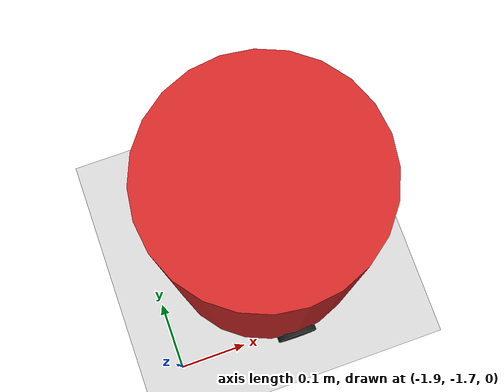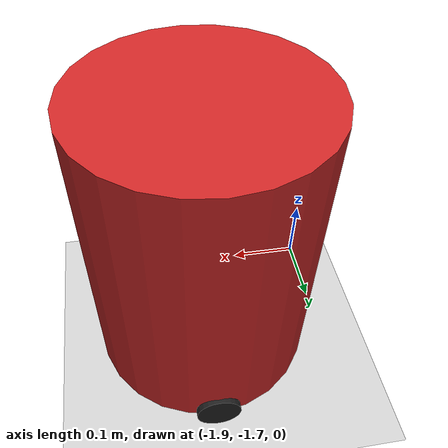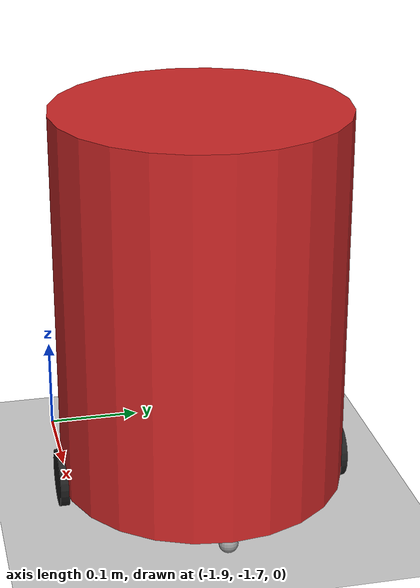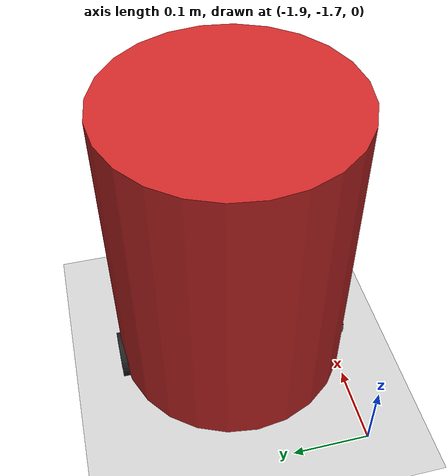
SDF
<sdf version="1.6">
 <world name="default">
  <model name="ground_plane">
   <static>1</static>
   <link name="ground_link">
    <collision name="collision">
     <geometry><plane><normal>0 0 1</normal><size>100 100</size></plane></geometry>
     <surface><friction><ode><mu>100</mu><mu2>50</mu2></ode></friction></surface>
    </collision>
    <visual name="visual">
     <cast_shadows>0</cast_shadows>
     <geometry><plane><normal>0 0 1</normal><size>100 100</size></plane></geometry>
     <material>
      <script><uri>file://media/materials/scripts/gazebo.material</uri><name>Gazebo/Grey</name></script>
     </material>
    </visual>
   </link>
  </model>
  <model name="CleanerBot_7">
   <link name="link_0">
    <inertial>
     <mass>1</mass>
     <inertia><ixx>0.145833</ixx><ixy>0</ixy><ixz>0</ixz><iyy>0.145833</iyy><iyz>0</iyz><izz>0.125</izz></inertia>
    </inertial>
    <pose>0 0 0.2001 0 -0 0</pose>
    <visual name="visual">
     <geometry><cylinder><radius>0.15</radius><length>0.4</length></cylinder></geometry>
     <material>
      <lighting>1</lighting>
      <script><uri>file://media/materials/scripts/gazebo.material</uri><name>Gazebo/Red</name></script>
      <shader type="pixel"><normal_map>__default__</normal_map></shader>
      <ambient>0.8 0 0 1</ambient>
      <diffuse>0.7 0.7 0.7 1</diffuse>
      <specular>0.01 0.01 0.01 1</specular>
      <emissive>0 0 0 1</emissive>
     </material>
    </visual>
    <collision name="collision">
     <geometry><cylinder><radius>0.15</radius><length>0.4</length></cylinder></geometry>
     <surface>
      <friction>
       <ode><mu>1</mu><mu2>1</mu2><fdir1>0 0 0</fdir1><slip1>0</slip1><slip2>0</slip2></ode>
       <torsional>
        <coefficient>1</coefficient>
        <patch_radius>0</patch_radius>
        <surface_radius>0</surface_radius>
        <use_patch_radius>1</use_patch_radius>
        <ode><slip>0</slip></ode>
       </torsional>
      </friction>
      <bounce><restitution_coefficient>0</restitution_coefficient><threshold>1e+06</threshold></bounce>
      <contact>
       <collide_without_contact>0</collide_without_contact>
       <collide_without_contact_bitmask>1</collide_without_contact_bitmask>
       <collide_bitmask>1</collide_bitmask>
       <ode>
        <soft_cfm>0</soft_cfm>
        <soft_erp>0.2</soft_erp>
        <kp>1e+13</kp>
        <kd>1</kd>
        <max_vel>0.01</max_vel>
        <min_depth>0</min_depth>
       </ode>
       <bullet>
        <split_impulse>1</split_impulse>
        <split_impulse_penetration_threshold>-0.01</split_impulse_penetration_threshold>
        <soft_cfm>0</soft_cfm>
        <soft_erp>0.2</soft_erp>
        <kp>1e+13</kp>
        <kd>1</kd>
       </bullet>
      </contact>
     </surface>
    </collision>
   </link>
   <link name="link_1">
    <inertial>
     <mass>1</mass>
     <inertia><ixx>0.145833</ixx><ixy>0</ixy><ixz>0</ixz><iyy>0.145833</iyy><iyz>0</iyz><izz>0.125</izz></inertia>
    </inertial>
    <pose>0 0.15 0.007 1.5707 -0 0</pose>
    <visual name="visual">
     <geometry><cylinder><radius>0.03</radius><length>0.01</length></cylinder></geometry>
     <material>
      <lighting>1</lighting>
      <script><uri>file://media/materials/scripts/gazebo.material</uri><name>Gazebo/Black</name></script>
      <shader type="pixel"><normal_map>__default__</normal_map></shader>
      <ambient>0 0 0.8 1</ambient>
      <diffuse>0.7 0.7 0.7 1</diffuse>
      <specular>0.01 0.01 0.01 1</specular>
      <emissive>0 0 0 1</emissive>
     </material>
    </visual>
    <collision name="collision">
     <geometry><cylinder><radius>0.03</radius><length>0.01</length></cylinder></geometry>
     <surface>
      <friction>
       <ode><mu>1</mu><mu2>1</mu2><fdir1>0 0 0</fdir1><slip1>0</slip1><slip2>0</slip2></ode>
       <torsional>
        <coefficient>1</coefficient>
        <patch_radius>0</patch_radius>
        <surface_radius>0</surface_radius>
        <use_patch_radius>1</use_patch_radius>
        <ode><slip>0</slip></ode>
       </torsional>
      </friction>
      <bounce><restitution_coefficient>0</restitution_coefficient><threshold>1e+06</threshold></bounce>
      <contact>
       <collide_without_contact>0</collide_without_contact>
       <collide_without_contact_bitmask>1</collide_without_contact_bitmask>
       <collide_bitmask>1</collide_bitmask>
       <ode>
        <soft_cfm>0</soft_cfm>
        <soft_erp>0.2</soft_erp>
        <kp>1e+13</kp>
        <kd>1</kd>
        <max_vel>0.01</max_vel>
        <min_depth>0</min_depth>
       </ode>
       <bullet>
        <split_impulse>1</split_impulse>
        <split_impulse_penetration_threshold>-0.01</split_impulse_penetration_threshold>
        <soft_cfm>0</soft_cfm>
        <soft_erp>0.2</soft_erp>
        <kp>1e+13</kp>
        <kd>1</kd>
       </bullet>
      </contact>
     </surface>
    </collision>
   </link>
   <link name="link_1_clone">
    <inertial>
     <mass>1</mass>
     <inertia><ixx>0.145833</ixx><ixy>0</ixy><ixz>0</ixz><iyy>0.145833</iyy><iyz>0</iyz><izz>0.125</izz></inertia>
    </inertial>
    <pose>0 -0.15 0.007 1.5707 -0 0</pose>
    <visual name="visual">
     <geometry><cylinder><radius>0.03</radius><length>0.01</length></cylinder></geometry>
     <material>
      <lighting>1</lighting>
      <script><uri>file://media/materials/scripts/gazebo.material</uri><name>Gazebo/Black</name></script>
      <shader type="pixel"><normal_map>__default__</normal_map></shader>
      <ambient>0 0 0.8 1</ambient>
      <diffuse>0.7 0.7 0.7 1</diffuse>
      <specular>0.01 0.01 0.01 1</specular>
      <emissive>0 0 0 1</emissive>
     </material>
    </visual>
    <collision name="collision">
     <geometry><cylinder><radius>0.03</radius><length>0.01</length></cylinder></geometry>
     <surface>
      <friction>
       <ode><mu>1</mu><mu2>1</mu2><fdir1>0 0 0</fdir1><slip1>0</slip1><slip2>0</slip2></ode>
       <torsional>
        <coefficient>1</coefficient>
        <patch_radius>0</patch_radius>
        <surface_radius>0</surface_radius>
        <use_patch_radius>1</use_patch_radius>
        <ode><slip>0</slip></ode>
       </torsional>
      </friction>
      <bounce><restitution_coefficient>0</restitution_coefficient><threshold>1e+06</threshold></bounce>
      <contact>
       <collide_without_contact>0</collide_without_contact>
       <collide_without_contact_bitmask>1</collide_without_contact_bitmask>
       <collide_bitmask>1</collide_bitmask>
       <ode>
        <soft_cfm>0</soft_cfm>
        <soft_erp>0.2</soft_erp>
        <kp>1e+13</kp>
        <kd>1</kd>
        <max_vel>0.01</max_vel>
        <min_depth>0</min_depth>
       </ode>
       <bullet>
        <split_impulse>1</split_impulse>
        <split_impulse_penetration_threshold>-0.01</split_impulse_penetration_threshold>
        <soft_cfm>0</soft_cfm>
        <soft_erp>0.2</soft_erp>
        <kp>1e+13</kp>
        <kd>1</kd>
       </bullet>
      </contact>
     </surface>
    </collision>
   </link>
   <link name="link_2">
    <inertial>
     <mass>1</mass>
     <inertia><ixx>0.1</ixx><ixy>0</ixy><ixz>0</ixz><iyy>0.1</iyy><iyz>0</iyz><izz>0.1</izz></inertia>
    </inertial>
    <pose>0.13 0 -0.013 0 -0 0</pose>
    <visual name="visual">
     <geometry><sphere><radius>0.01</radius></sphere></geometry>
     <material>
      <lighting>1</lighting>
      <script><uri>file://media/materials/scripts/gazebo.material</uri><name>Gazebo/Grey</name></script>
      <shader type="pixel"><normal_map>__default__</normal_map></shader>
      <ambient>0.3 0.3 0.3 1</ambient>
      <diffuse>0.7 0.7 0.7 1</diffuse>
      <specular>0.01 0.01 0.01 1</specular>
      <emissive>0 0 0 1</emissive>
     </material>
    </visual>
    <collision name="collision">
     <geometry><sphere><radius>0.01</radius></sphere></geometry>
     <surface>
      <friction>
       <ode><mu>0</mu><mu2>0</mu2><fdir1>0 0 0</fdir1><slip1>0</slip1><slip2>0</slip2></ode>
       <torsional>
        <coefficient>1</coefficient>
        <patch_radius>0</patch_radius>
        <surface_radius>0</surface_radius>
        <use_patch_radius>1</use_patch_radius>
        <ode><slip>0</slip></ode>
       </torsional>
      </friction>
      <bounce><restitution_coefficient>0</restitution_coefficient><threshold>1e+06</threshold></bounce>
      <contact>
       <collide_without_contact>0</collide_without_contact>
       <collide_without_contact_bitmask>1</collide_without_contact_bitmask>
       <collide_bitmask>1</collide_bitmask>
       <ode>
        <soft_cfm>0</soft_cfm>
        <soft_erp>0.2</soft_erp>
        <kp>1e+13</kp>
        <kd>1</kd>
        <max_vel>0.01</max_vel>
        <min_depth>0</min_depth>
       </ode>
       <bullet>
        <split_impulse>1</split_impulse>
        <split_impulse_penetration_threshold>-0.01</split_impulse_penetration_threshold>
        <soft_cfm>0</soft_cfm>
        <soft_erp>0.2</soft_erp>
        <kp>1e+13</kp>
        <kd>1</kd>
       </bullet>
      </contact>
     </surface>
    </collision>
   </link>
   <link name="link_2_clone">
    <inertial>
     <mass>1</mass>
     <inertia><ixx>0.1</ixx><ixy>0</ixy><ixz>0</ixz><iyy>0.1</iyy><iyz>0</iyz><izz>0.1</izz></inertia>
    </inertial>
    <pose>-0.13 0 -0.013 0 -0 0</pose>
    <visual name="visual">
     <geometry><sphere><radius>0.01</radius></sphere></geometry>
     <material>
      <lighting>1</lighting>
      <script><uri>file://media/materials/scripts/gazebo.material</uri><name>Gazebo/Grey</name></script>
      <shader type="pixel"><normal_map>__default__</normal_map></shader>
      <ambient>0.3 0.3 0.3 1</ambient>
      <diffuse>0.7 0.7 0.7 1</diffuse>
      <specular>0.01 0.01 0.01 1</specular>
      <emissive>0 0 0 1</emissive>
     </material>
    </visual>
    <collision name="collision">
     <geometry><sphere><radius>0.01</radius></sphere></geometry>
     <surface>
      <friction>
       <ode><mu>0</mu><mu2>0</mu2><fdir1>0 0 0</fdir1><slip1>0</slip1><slip2>0</slip2></ode>
       <torsional>
        <coefficient>1</coefficient>
        <patch_radius>0</patch_radius>
        <surface_radius>0</surface_radius>
        <use_patch_radius>1</use_patch_radius>
        <ode><slip>0</slip></ode>
       </torsional>
      </friction>
      <bounce><restitution_coefficient>0</restitution_coefficient><threshold>1e+06</threshold></bounce>
      <contact>
       <collide_without_contact>0</collide_without_contact>
       <collide_without_contact_bitmask>1</collide_without_contact_bitmask>
       <collide_bitmask>1</collide_bitmask>
       <ode>
        <soft_cfm>0</soft_cfm>
        <soft_erp>0.2</soft_erp>
        <kp>1e+13</kp>
        <kd>1</kd>
        <max_vel>0.01</max_vel>
        <min_depth>0</min_depth>
       </ode>
       <bullet>
        <split_impulse>1</split_impulse>
        <split_impulse_penetration_threshold>-0.01</split_impulse_penetration_threshold>
        <soft_cfm>0</soft_cfm>
        <soft_erp>0.2</soft_erp>
        <kp>1e+13</kp>
        <kd>1</kd>
       </bullet>
      </contact>
     </surface>
    </collision>
   </link>
   <joint name="link_0_JOINT_1" type="revolute">
    <parent>link_0</parent>
    <child>link_1_clone</child>
    <axis>
     <xyz>0 0 1</xyz>
     <limit>
      <lower>-1.79769e+308</lower>
      <upper>1.79769e+308</upper>
      <effort>-1</effort>
      <velocity>-1</velocity>
     </limit>
     <dynamics>
      <spring_reference>0</spring_reference>
      <spring_stiffness>0</spring_stiffness>
      <damping>0</damping>
     </dynamics>
     <use_parent_model_frame>0</use_parent_model_frame>
    </axis>
    <physics>
     <ode><limit><cfm>0</cfm><erp>0.2</erp></limit><suspension><cfm>0</cfm><erp>0.2</erp></suspension></ode>
    </physics>
   </joint>
   <joint name="link_0_JOINT_2" type="revolute">
    <parent>link_0</parent>
    <child>link_1</child>
    <axis>
     <xyz>0 0 1</xyz>
     <limit>
      <lower>-1.79769e+308</lower>
      <upper>1.79769e+308</upper>
      <effort>-1</effort>
      <velocity>-1</velocity>
     </limit>
     <dynamics>
      <spring_reference>0</spring_reference>
      <spring_stiffness>0</spring_stiffness>
      <damping>0</damping>
     </dynamics>
     <use_parent_model_frame>0</use_parent_model_frame>
    </axis>
    <physics>
     <ode><limit><cfm>0</cfm><erp>0.2</erp></limit><suspension><cfm>0</cfm><erp>0.2</erp></suspension></ode>
    </physics>
   </joint>
   <joint name="link_0_JOINT_4" type="fixed">
    <parent>link_0</parent>
    <child>link_2</child>
    <physics>
     <ode><limit><cfm>0</cfm><erp>0.2</erp></limit><suspension><cfm>0</cfm><erp>0.2</erp></suspension></ode>
    </physics>
   </joint>
   <joint name="link_0_JOINT_5" type="fixed">
    <parent>link_0</parent>
    <child>link_2_clone</child>
    <physics>
     <ode><limit><cfm>0</cfm><erp>0.2</erp></limit><suspension><cfm>0</cfm><erp>0.2</erp></suspension></ode>
    </physics>
   </joint>
   <static>0</static>
   <pose>-1.71857 -1.56176 0.022999 -9e-06 -1e-05 -0.004827</pose>
  </model>
 </world>
</sdf>
